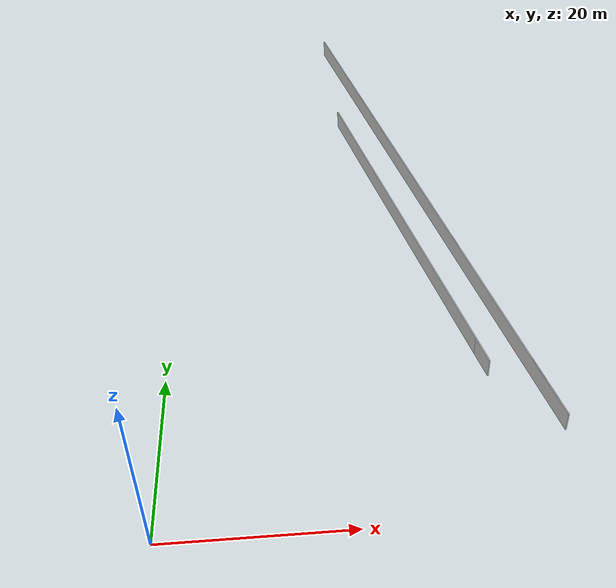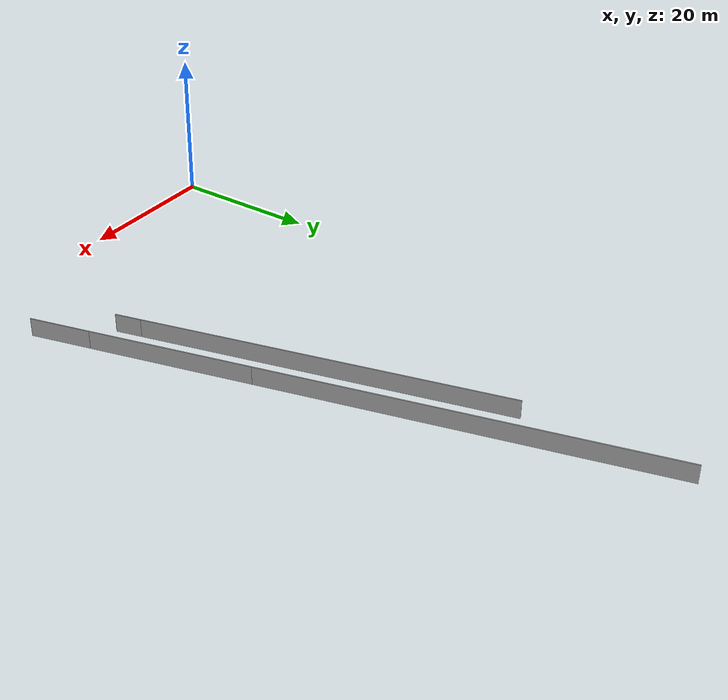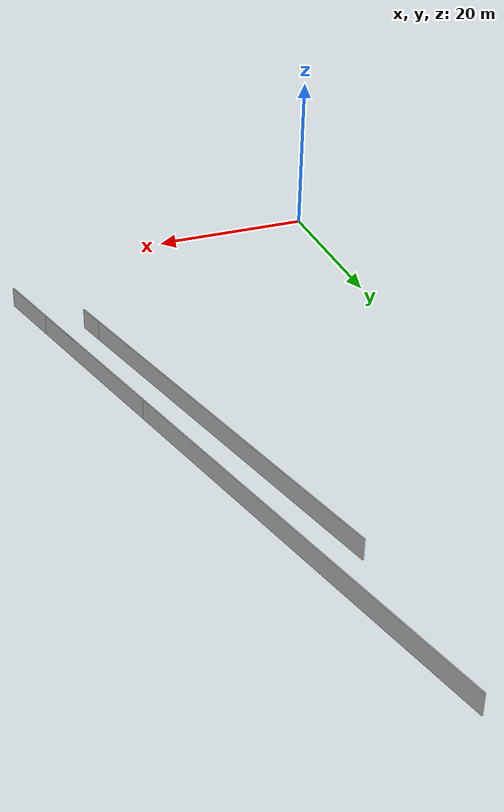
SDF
<?xml version="1.0" ?>
<sdf version="1.6">
  <model name="sps_0512">
    <pose frame="">0 0 0 0 -0 0</pose>
    <static>1</static>
    <self_collide>0</self_collide>
    <allow_auto_disable>0</allow_auto_disable>
    <link name="Wall174">
      <kinematic>0</kinematic>
      <gravity>1</gravity>
      <self_collide>0</self_collide>
      <collision name="collision">
        <geometry>
          <box>
            <size>21.6351 0.15 2.5</size>
          </box>
        </geometry>
        <pose frame="">0 0 0 0 -0 0</pose>
      </collision>
      <visual name="visual">
        <geometry>
          <box>
            <size>21.6351 0.15 2.5</size>
          </box>
        </geometry>
        <pose frame="">0 0 0 0 -0 0</pose>
        <cast_shadows>1</cast_shadows>
        <transparency>0.0</transparency>
      </visual>
      <pose frame="">37.2519 28.3467 1.25 0 0 -1.31066</pose>
    </link>
    <link name="Wall175">
      <kinematic>0</kinematic>
      <gravity>1</gravity>
      <self_collide>0</self_collide>
      <collision name="collision">
        <geometry>
          <box>
            <size>8.21228 0.15 2.5</size>
          </box>
        </geometry>
        <pose frame="">0 0 0 0 -0 0</pose>
      </collision>
      <visual name="visual">
        <geometry>
          <box>
            <size>8.21228 0.15 2.5</size>
          </box>
        </geometry>
        <pose frame="">0 0 0 0 -0 0</pose>
        <cast_shadows>1</cast_shadows>
        <transparency>0.0</transparency>
      </visual>
      <pose frame="">41.0905 13.9251 1.25 0 0 -1.31066</pose>
    </link>
    <link name="Wall507">
      <kinematic>0</kinematic>
      <gravity>1</gravity>
      <self_collide>0</self_collide>
      <collision name="collision">
        <geometry>
          <box>
            <size>3.51225 0.15 2.5</size>
          </box>
        </geometry>
        <pose frame="">0 0 0 0 -0 0</pose>
      </collision>
      <visual name="visual">
        <geometry>
          <box>
            <size>3.51225 0.15 2.5</size>
          </box>
        </geometry>
        <pose frame="">0 0 0 0 -0 0</pose>
        <cast_shadows>1</cast_shadows>
        <transparency>0.0</transparency>
      </visual>
      <pose frame="">34.9216 19.59 1.25 0 -0 1.83122</pose>
    </link>
    <link name="Wall508">
      <kinematic>0</kinematic>
      <gravity>1</gravity>
      <self_collide>0</self_collide>
      <collision name="collision">
        <geometry>
          <box>
            <size>48.2326 0.15 2.5</size>
          </box>
        </geometry>
        <pose frame="">0 0 0 0 -0 0</pose>
      </collision>
      <visual name="visual">
        <geometry>
          <box>
            <size>48.2326 0.15 2.5</size>
          </box>
        </geometry>
        <pose frame="">0 0 0 0 -0 0</pose>
        <cast_shadows>1</cast_shadows>
        <transparency>0.0</transparency>
      </visual>
      <pose frame="">28.2596 44.59 1.25 0 -0 1.83122</pose>
    </link>
    <link name="Wall1857">
      <kinematic>0</kinematic>
      <gravity>1</gravity>
      <self_collide>0</self_collide>
      <collision name="collision">
        <geometry>
          <box>
            <size>81.5918 0.15 2.5</size>
          </box>
        </geometry>
        <pose frame="">0 0 0 0 -0 0</pose>
      </collision>
      <visual name="visual">
        <geometry>
          <box>
            <size>81.5918 0.15 2.5</size>
          </box>
        </geometry>
        <pose frame="">0 0 0 0 -0 0</pose>
        <cast_shadows>1</cast_shadows>
        <transparency>0.0</transparency>
      </visual>
      <pose frame="">31.6533 49.3804 1.25 0 0 -1.31066</pose>
    </link>
  </model>
</sdf>
